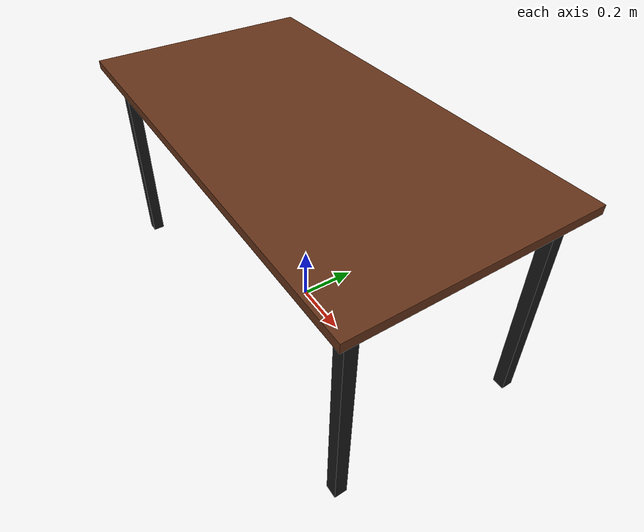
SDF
<?xml version="1.0" ?>
<sdf version="1.6">
  <model name="table">
    <static>true</static>
    <link name="link">
      <collision name="surface">
        <pose>0 0 0.735 0 0 0</pose>
        <geometry>
          <box>
            <size>1.5 0.8 0.03</size>
          </box>
        </geometry>
        <surface>
          <friction>
            <ode>
              <mu>1.0</mu>
              <mu2>1.0</mu2>
            </ode>
          </friction>
          <contact>
            <ode>
              <kp>1000000.0</kp>
              <kd>1.0</kd>
            </ode>
          </contact>
        </surface>
      </collision>

      <visual name="visual_surface">
        <pose>0 0 0.735 0 0 0</pose>
        <geometry>
          <box>
            <size>1.5 0.8 0.03</size>
          </box>
        </geometry>
        <material>
          <ambient>0.4 0.2 0.1 1</ambient>
          <diffuse>0.4 0.2 0.1 1</diffuse>
          <specular>0.1 0.1 0.1 1</specular>
        </material>
      </visual>

      <collision name="leg1">
        <pose>0.68 0.33 0.36 0 0 0</pose>
        <geometry><box><size>0.04 0.04 0.72</size></box></geometry>
      </collision>
      <visual name="visual_leg1">
        <pose>0.68 0.33 0.36 0 0 0</pose>
        <geometry><box><size>0.04 0.04 0.72</size></box></geometry>
        <material><ambient>0.1 0.1 0.1 1</ambient><diffuse>0.1 0.1 0.1 1</diffuse></material>
      </visual>

      <collision name="leg2">
        <pose>-0.68 0.33 0.36 0 0 0</pose>
        <geometry><box><size>0.04 0.04 0.72</size></box></geometry>
      </collision>
      <visual name="visual_leg2">
        <pose>-0.68 0.33 0.36 0 0 0</pose>
        <geometry><box><size>0.04 0.04 0.72</size></box></geometry>
        <material><ambient>0.1 0.1 0.1 1</ambient><diffuse>0.1 0.1 0.1 1</diffuse></material>
      </visual>

      <collision name="leg3">
        <pose>0.68 -0.33 0.36 0 0 0</pose>
        <geometry><box><size>0.04 0.04 0.72</size></box></geometry>
      </collision>
      <visual name="visual_leg3">
        <pose>0.68 -0.33 0.36 0 0 0</pose>
        <geometry><box><size>0.04 0.04 0.72</size></box></geometry>
        <material><ambient>0.1 0.1 0.1 1</ambient><diffuse>0.1 0.1 0.1 1</diffuse></material>
      </visual>

      <collision name="leg4">
        <pose>-0.68 -0.33 0.36 0 0 0</pose>
        <geometry><box><size>0.04 0.04 0.72</size></box></geometry>
      </collision>
      <visual name="visual_leg4">
        <pose>-0.68 -0.33 0.36 0 0 0</pose>
        <geometry><box><size>0.04 0.04 0.72</size></box></geometry>
        <material><ambient>0.1 0.1 0.1 1</ambient><diffuse>0.1 0.1 0.1 1</diffuse></material>
      </visual>
    </link>
  </model>
</sdf>
